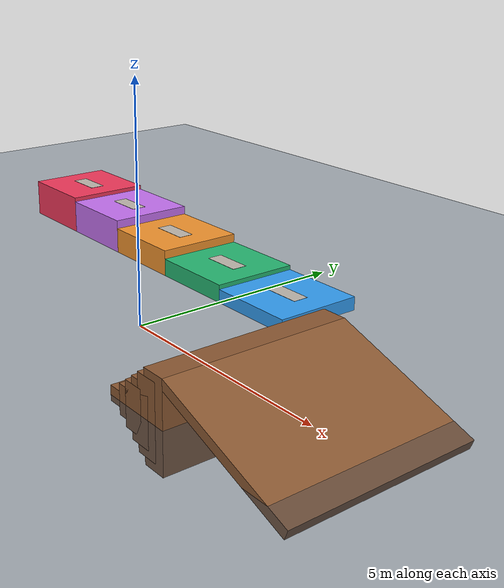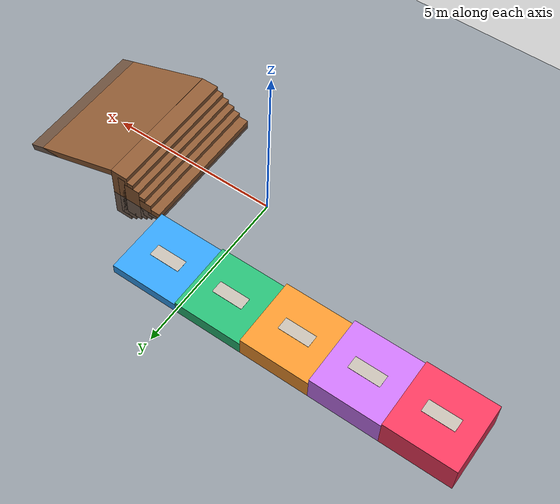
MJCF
<mujoco model="empty_world">

  <statistic center="0 0 0.1" extent="0.8"/>

  <visual>
    <headlight diffuse="0.6 0.6 0.6" ambient="0.3 0.3 0.3" specular="0 0 0"/>
    <rgba haze="0.15 0.25 0.35 1"/>
    <global azimuth="-130" elevation="-20"/>
  </visual>

  <asset>
    <texture type="skybox" builtin="gradient" rgb1="0.3 0.5 0.7" rgb2="0 0 0" width="512" height="3072"/>
    <texture type="2d" name="groundplane" builtin="checker" mark="edge" rgb1="0.2 0.3 0.4" rgb2="0.1 0.2 0.3"
      markrgb="0.8 0.8 0.8" width="300" height="300"/>
    <material name="groundplane" texture="groundplane" texuniform="true" texrepeat="5 5" reflectance="0.2"/>
    <texture type="2d" name="wood_tex" builtin="flat" rgb1="0.55 0.35 0.2" width="512" height="512"/>
    <material name="wood_mat" texture="wood_tex" specular="0.2" shininess="0.1" rgba="1 1 1 1"/>
    <texture type="2d" name="label_30cm_tex" file="textures/30cm.png"/>
    <texture type="2d" name="label_40cm_tex" file="textures/40cm.png"/>
    <texture type="2d" name="label_60cm_tex" file="textures/60cm.png"/>
    <texture type="2d" name="label_80cm_tex" file="textures/80cm.png"/>
    <texture type="2d" name="label_90cm_tex" file="textures/90cm.png"/>
    <material name="label_30cm_mat" texture="label_30cm_tex" texuniform="true" emission="0.15" specular="0" shininess="0"/>
    <material name="label_40cm_mat" texture="label_40cm_tex" texuniform="true" emission="0.15" specular="0" shininess="0"/>
    <material name="label_60cm_mat" texture="label_60cm_tex" texuniform="true" emission="0.15" specular="0" shininess="0"/>
    <material name="label_80cm_mat" texture="label_80cm_tex" texuniform="true" emission="0.15" specular="0" shininess="0"/>
    <material name="label_90cm_mat" texture="label_90cm_tex" texuniform="true" emission="0.15" specular="0" shininess="0"/>
  </asset>

  <worldbody>
    <light pos="0 0 1.5" dir="0 0 -1" directional="true"/>
    <geom name="floor" size="0 0 0.05" type="plane" material="groundplane"/>

    <geom pos="1.0 3 0.15" type="box"  size="1.0 1.0 0.15" quat="1.0 0 0 0" rgba="0.20 0.62 0.95 1"/>
    <geom pos="1.0 3 0.303" type="box" size="0.45 0.18 0.002" quat="1.0 0 0 0" material="label_30cm_mat" contype="0" conaffinity="0"/>
    <geom pos="-1.0 3.0 0.20" type="box"  size="1.0 1.0 0.20" quat="1.0 0 0 0" rgba="0.15 0.72 0.45 1"/>
    <geom pos="-1.0 3.0 0.403" type="box" size="0.45 0.18 0.002" quat="1.0 0 0 0" material="label_40cm_mat" contype="0" conaffinity="0"/>
    <geom pos="-3.0 3.0 0.30" type="box"  size="1.0 1.0 0.30" quat="1.0 0 0 0" rgba="0.95 0.58 0.18 1"/>
    <geom pos="-3.0 3.0 0.603" type="box" size="0.45 0.18 0.002" quat="1.0 0 0 0" material="label_60cm_mat" contype="0" conaffinity="0"/>
    <geom pos="-5.0 3.0 0.40" type="box"  size="1.0 1.0 0.40" quat="1.0 0 0 0" rgba="0.78 0.45 0.95 1"/>
    <geom pos="-5.0 3.0 0.803" type="box" size="0.45 0.18 0.002" quat="1.0 0 0 0" material="label_80cm_mat" contype="0" conaffinity="0"/>
    <geom pos="-7.0 3.0 0.45" type="box"  size="1.0 1.0 0.45" quat="1.0 0 0 0" rgba="0.95 0.22 0.36 1"/>
    <geom pos="-7.0 3.0 0.903" type="box" size="0.45 0.18 0.002" quat="1.0 0 0 0" material="label_90cm_mat" contype="0" conaffinity="0"/>

    <geom pos="2.3 0 0.02" type="box"  size="0.2 2 0.15" quat="1.0 0 0 0" material="wood_mat"/>
    <geom pos="2.6 0 0.02" type="box"  size="0.22 2 0.3" quat="1.0 0 0 0" material="wood_mat"/>
    <geom pos="2.8 0 0.02" type="box"  size="0.23 2 0.45" quat="1.0 0 0 0" material="wood_mat"/>
    <geom pos="3 0 0.02" type="box"  size="0.24 2 0.6" quat="1.0 0 0 0" material="wood_mat"/>
    <geom pos="3.2 0 0.02" type="box"  size="0.25 2 0.75" quat="1.0 0 0 0" material="wood_mat"/>
    <geom pos="3.4 0 0.02" type="box"  size="0.26 2 0.9" quat="1.0 0 0 0" material="wood_mat"/>

    <geom pos="5.13 0 0.28" type="box" size="1.6 2 0.1" quat="0.98481 0 0.17365 0" material="wood_mat"/>

  </worldbody>
</mujoco>
